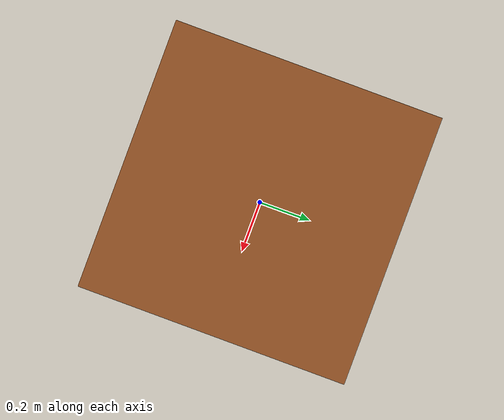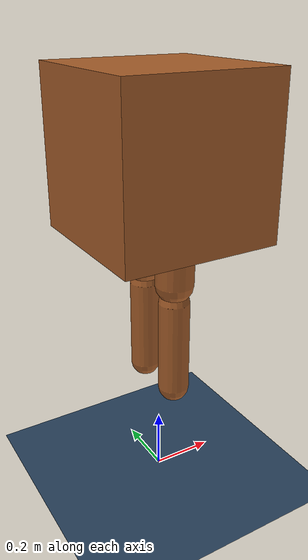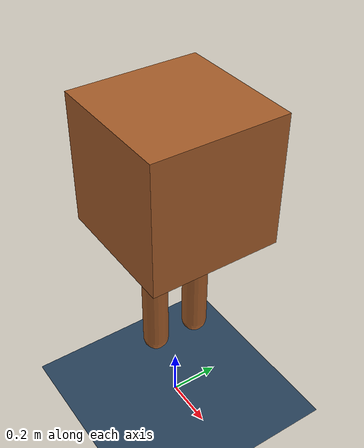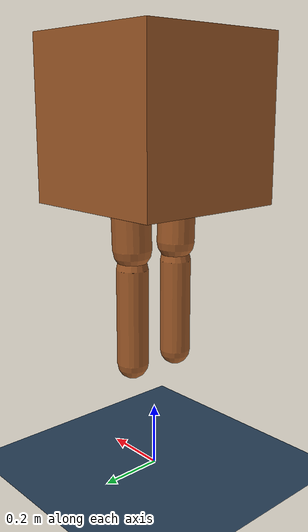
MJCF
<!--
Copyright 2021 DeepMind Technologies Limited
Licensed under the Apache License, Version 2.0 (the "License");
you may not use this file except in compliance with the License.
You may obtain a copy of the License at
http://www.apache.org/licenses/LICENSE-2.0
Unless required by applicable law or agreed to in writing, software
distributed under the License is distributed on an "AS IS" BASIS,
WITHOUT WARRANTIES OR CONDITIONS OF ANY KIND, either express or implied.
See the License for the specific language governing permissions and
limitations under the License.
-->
<mujoco model="Humanoid">
  <option timestep="0.005"/>

  <visual>
    <map force="0.1" zfar="30"/>
    <rgba haze="0.15 0.25 0.35 1"/>
    <global offwidth="2560" offheight="1440" elevation="-20" azimuth="120"/>
  </visual>

  <statistic center="0 0 0.7"/>

  <asset>
    <texture type="skybox" builtin="gradient" rgb1=".3 .5 .7" rgb2="0 0 0" width="32" height="512"/>
    <texture name="body" type="cube" builtin="flat" mark="cross" width="127" height="1278" rgb1="0.8 0.6 0.4" rgb2="0.8 0.6 0.4" markrgb="1 1 1" random="0.01"/>
    <material name="body" texture="body" texuniform="true" rgba="0.8 0.6 .4 1"/>
    <texture name="grid" type="2d" builtin="checker" width="512" height="512" rgb1=".1 .2 .3" rgb2=".2 .3 .4"/>
    <material name="grid" texture="grid" texrepeat="1 1" texuniform="true" reflectance=".2"/>
  </asset>

  <default>
    <motor ctrlrange="-1 1" ctrllimited="true"/>
    <default class="body">

      <!-- geoms -->
      <geom type="capsule" condim="1" friction=".7" solimp=".9 .99 .003" solref=".015 1" material="body"/>
      <default class="thigh">
        <geom size=".06"/>
      </default>
      <default class="shin">
        <geom fromto="0 0 0 0 0 -.3"  size=".049"/>
      </default>

      <!-- joints -->
      <joint type="hinge" damping=".2" stiffness="1" armature=".01" limited="true" solimplimit="0 .99 .01"/>
      <default class="joint_big">
        <joint damping="5" stiffness="10"/>
        <default class="hip_x">
          <joint range="-30 10"/>
        </default>
        <default class="hip_z">
          <joint range="-60 35"/>
        </default>
        <default class="hip_y">
          <joint axis="0 1 0" range="-150 20"/>
        </default>
        <default class="joint_big_stiff">
          <joint stiffness="20"/>
        </default>
      </default>
      <default class="knee">
        <joint pos="0 0 .02" axis="0 -1 0" range="-160 2"/>
      </default>
      <default class="ankle">
        <joint range="-50 50"/>
        <default class="ankle_y">
          <joint pos="0 0 .08" axis="0 1 0" stiffness="6"/>
        </default>
        <default class="ankle_x">
          <joint pos="0 0 .04" stiffness="3"/>
        </default>
      </default>
    </default>
  </default>

  <worldbody>
    <geom name="floor" size="0 0 .05" type="plane" material="grid" condim="3"/>
    <light name="spotlight" mode="targetbodycom" target="torso" diffuse=".8 .8 .8" specular="0.3 0.3 0.3" pos="0 -6 4" cutoff="30"/>
    <body name="torso" pos="0 0 1.282" childclass="body">
      <light name="top" pos="0 0 2" mode="trackcom"/>
      <camera name="back" pos="-3 0 1" xyaxes="0 -1 0 1 0 2" mode="trackcom"/>
      <camera name="side" pos="0 -3 1" xyaxes="1 0 0 0 1 2" mode="trackcom"/>
      <freejoint name="root"/>

      <body name="pelvis" pos="0 0 -.165">
        <geom name="cart" type="box" size="0.25 0.25 0.25"/>
        <body name="thigh_right" pos="0 -.1 -.04">
          <joint name="hip_x_right" axis="1 0 0" class="hip_x"/>
          <joint name="hip_z_right" axis="0 0 1" class="hip_z"/>
          <joint name="hip_y_right" class="hip_y"/>
          <geom name="thigh_right" fromto="0 0 0 0 .01 -.34" class="thigh"/>
          <body name="shin_right" pos="0 .01 -.4">
            <joint name="knee_right" class="knee"/>
            <geom name="shin_right" class="shin"/>
          </body>
        </body>
        <body name="thigh_left" pos="0 .1 -.04">
          <joint name="hip_x_left" axis="-1 0 0" class="hip_x"/>
          <joint name="hip_z_left" axis="0 0 -1" class="hip_z"/>
          <joint name="hip_y_left" class="hip_y"/>
          <geom name="thigh_left" fromto="0 0 0 0 -.01 -.34" class="thigh"/>
          <body name="shin_left" pos="0 -.01 -.4">
            <joint name="knee_left" class="knee"/>
            <geom name="shin_left" fromto="0 0 0 0 0 -.3" class="shin"/>
          </body>
        </body>
      </body>
    </body>
  </worldbody>

  <tendon>
    <fixed name="hamstring_right" limited="true" range="-0.3 2">
      <joint joint="hip_y_right" coef=".5"/>
      <joint joint="knee_right" coef="-.5"/>
    </fixed>
    <fixed name="hamstring_left" limited="true" range="-0.3 2">
      <joint joint="hip_y_left" coef=".5"/>
      <joint joint="knee_left" coef="-.5"/>
    </fixed>
  </tendon>

  <actuator>

    <motor name="hip_x_right"     gear="40"  joint="hip_x_right"/>
    <motor name="hip_z_right"     gear="40"  joint="hip_z_right"/>
    <motor name="hip_y_right"     gear="120" joint="hip_y_right"/>
    <motor name="knee_right"      gear="80"  joint="knee_right"/>
    <motor name="hip_x_left"      gear="40"  joint="hip_x_left"/>
    <motor name="hip_z_left"      gear="40"  joint="hip_z_left"/>
    <motor name="hip_y_left"      gear="120" joint="hip_y_left"/>
    <motor name="knee_left"       gear="80"  joint="knee_left"/>
  </actuator>
</mujoco>
